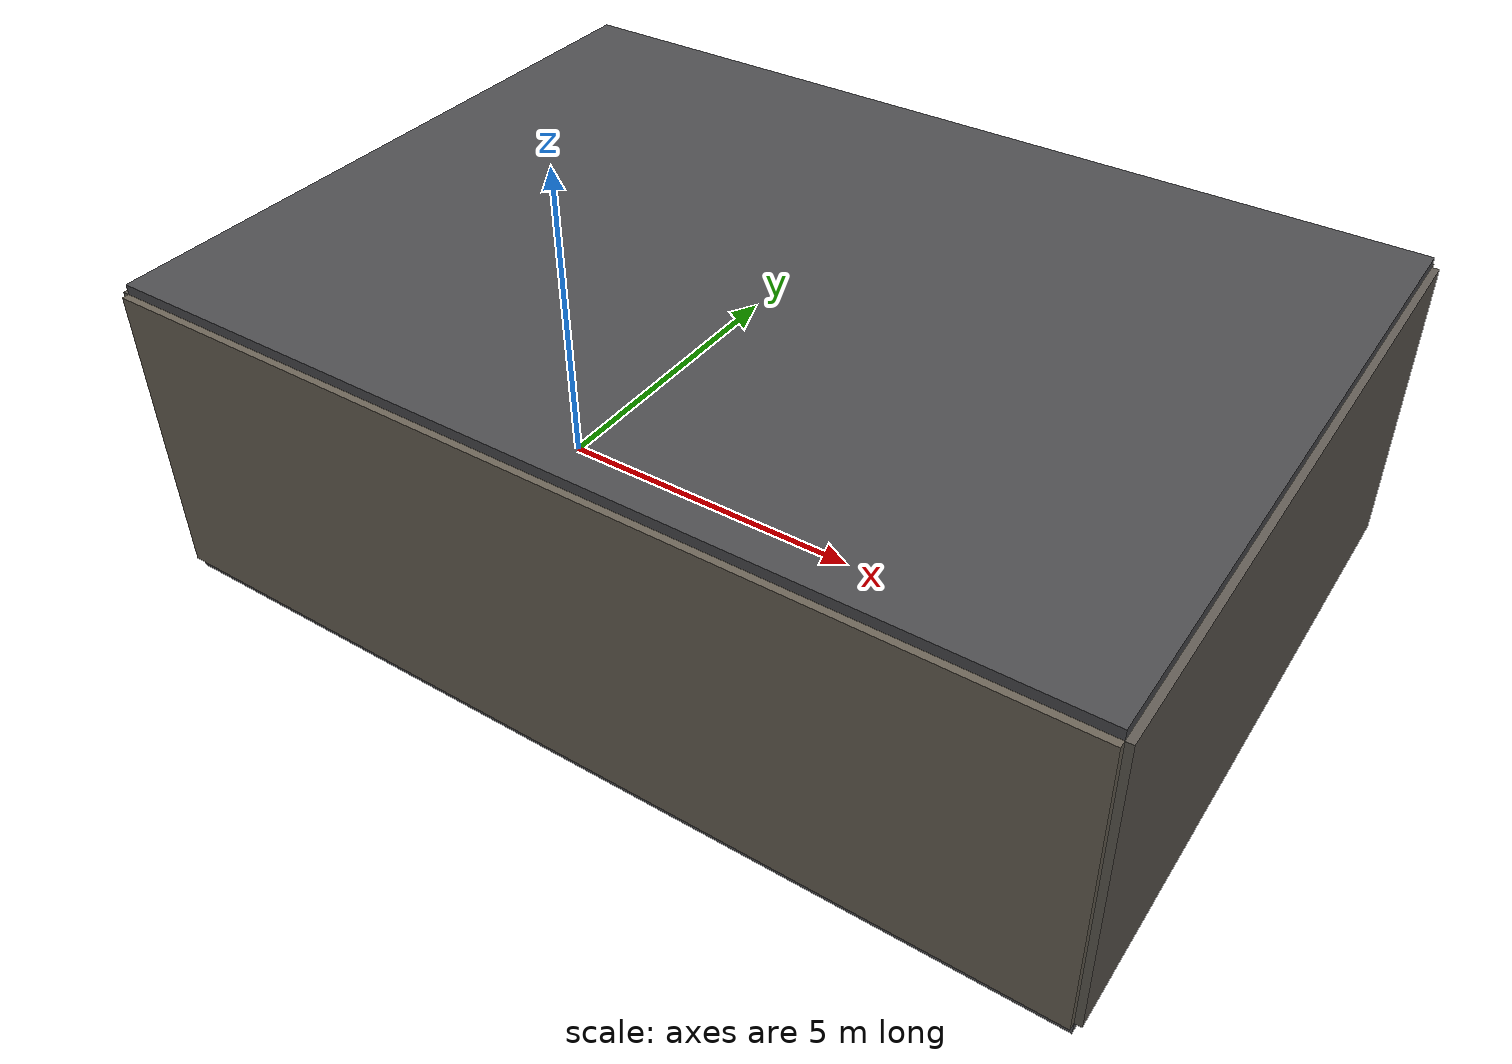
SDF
<?xml version="1.0" ?>
<sdf version="1.6">
  <world name="five_meter_avoidance">
    <include><uri>model://sun</uri></include>
    <gravity>0 0 -9.81</gravity>

    <scene>
      <ambient>0.45 0.45 0.45 1</ambient>
      <background>0.04 0.04 0.05 1</background>
      <shadows>true</shadows>
    </scene>

    <gui fullscreen="0">
      <camera name="five_meter_overview">
        <pose>-4 -8 7 0 0.45 0.75</pose>
        <view_controller>orbit</view_controller>
      </camera>
    </gui>

    <!-- A 14 m x 10 m closed room gives Fast-LIO2 non-degenerate returns. -->
    <model name="test_room">
      <static>true</static>
      <link name="room">
        <collision name="floor_collision">
          <pose>4 0 -0.10 0 0 0</pose>
          <geometry><box><size>14 10 0.20</size></box></geometry>
        </collision>
        <visual name="floor_visual">
          <pose>4 0 -0.10 0 0 0</pose>
          <geometry><box><size>14 10 0.20</size></box></geometry>
          <material><ambient>0.24 0.24 0.25 1</ambient><diffuse>0.34 0.34 0.35 1</diffuse></material>
        </visual>

        <collision name="left_wall_collision">
          <pose>4 5 2.25 0 0 0</pose>
          <geometry><box><size>14 0.20 4.5</size></box></geometry>
        </collision>
        <visual name="left_wall_visual">
          <pose>4 5 2.25 0 0 0</pose>
          <geometry><box><size>14 0.20 4.5</size></box></geometry>
          <material><ambient>0.30 0.28 0.25 1</ambient><diffuse>0.42 0.39 0.34 1</diffuse></material>
        </visual>

        <collision name="right_wall_collision">
          <pose>4 -5 2.25 0 0 0</pose>
          <geometry><box><size>14 0.20 4.5</size></box></geometry>
        </collision>
        <visual name="right_wall_visual">
          <pose>4 -5 2.25 0 0 0</pose>
          <geometry><box><size>14 0.20 4.5</size></box></geometry>
          <material><ambient>0.30 0.28 0.25 1</ambient><diffuse>0.42 0.39 0.34 1</diffuse></material>
        </visual>

        <collision name="rear_wall_collision">
          <pose>-3 0 2.25 0 0 0</pose>
          <geometry><box><size>0.20 10 4.5</size></box></geometry>
        </collision>
        <visual name="rear_wall_visual">
          <pose>-3 0 2.25 0 0 0</pose>
          <geometry><box><size>0.20 10 4.5</size></box></geometry>
          <material><ambient>0.26 0.25 0.24 1</ambient><diffuse>0.38 0.36 0.33 1</diffuse></material>
        </visual>

        <collision name="front_wall_collision">
          <pose>11 0 2.25 0 0 0</pose>
          <geometry><box><size>0.20 10 4.5</size></box></geometry>
        </collision>
        <visual name="front_wall_visual">
          <pose>11 0 2.25 0 0 0</pose>
          <geometry><box><size>0.20 10 4.5</size></box></geometry>
          <material><ambient>0.26 0.25 0.24 1</ambient><diffuse>0.38 0.36 0.33 1</diffuse></material>
        </visual>

        <collision name="ceiling_collision">
          <pose>4 0 4.55 0 0 0</pose>
          <geometry><box><size>14 10 0.20</size></box></geometry>
        </collision>
        <visual name="ceiling_visual">
          <pose>4 0 4.55 0 0 0</pose>
          <geometry><box><size>14 10 0.20</size></box></geometry>
          <material><ambient>0.20 0.20 0.21 1</ambient><diffuse>0.30 0.30 0.31 1</diffuse></material>
        </visual>
      </link>
    </model>

    <model name="center_obstacle">
      <static>true</static>
      <pose>2.5 0 2.25 0 0 0</pose>
      <link name="obstacle">
        <collision name="collision">
          <geometry><box><size>0.60 1.40 4.50</size></box></geometry>
        </collision>
        <visual name="visual">
          <geometry><box><size>0.60 1.40 4.50</size></box></geometry>
          <material><ambient>0.65 0.22 0.08 1</ambient><diffuse>0.90 0.30 0.10 1</diffuse></material>
        </visual>
      </link>
    </model>

    <light name="test_light" type="point">
      <pose>1 0 3.5 0 0 0</pose>
      <diffuse>0.8 0.8 0.8 1</diffuse>
      <specular>0.1 0.1 0.1 1</specular>
      <attenuation><range>20</range><constant>0.5</constant><linear>0.02</linear><quadratic>0.005</quadratic></attenuation>
      <cast_shadows>true</cast_shadows>
    </light>
  </world>
</sdf>
